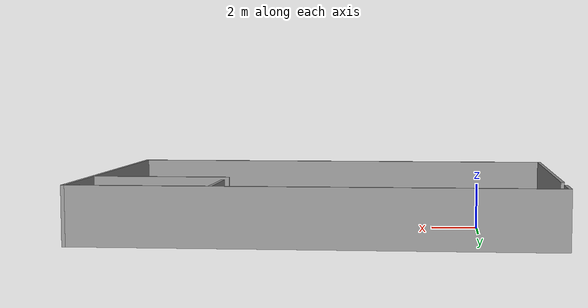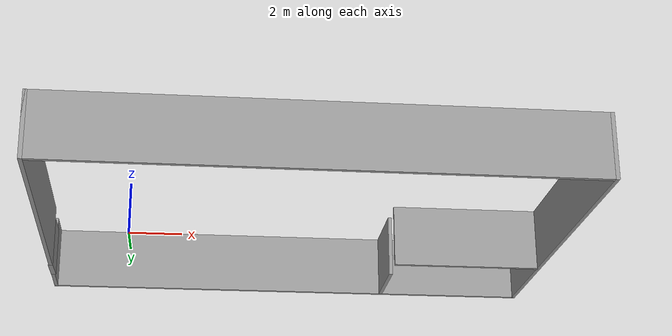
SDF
<?xml version='1.0'?>
<sdf version='1.7'>
  <model name='cafe_sim.world'>
    <pose>6.70803 0.117057 0 0 -0 0</pose>
    <link name='Door_0'>
      <collision name='Door_0_Collision'>
        <geometry>
          <box>
            <size>1.26718 0.2 2</size>
          </box>
        </geometry>
        <pose>0 0 1 0 -0 0</pose>
      </collision>
      <visual name='Door_0_Visual'>
        <pose>0 0 1 0 -0 0</pose>
        <geometry>
          <box>
            <size>1.26718 0.2 2</size>
          </box>
        </geometry>
        <material>
          <script>
            <uri>file://media/materials/scripts/gazebo.material</uri>
            <name>Gazebo/Grey</name>
          </script>
        </material>
      </visual>
      <pose>-10.0446 4.97633 0 0 -0 -1.58868</pose>
    </link>
    <link name='Wall_11'>
      <collision name='Wall_11_Collision'>
        <geometry>
          <box>
            <size>6 0.15 2.5</size>
          </box>
        </geometry>
        <pose>0 0 1.25 0 -0 0</pose>
      </collision>
      <visual name='Wall_11_Visual'>
        <pose>0 0 1.25 0 -0 0</pose>
        <geometry>
          <box>
            <size>6 0.15 2.5</size>
          </box>
        </geometry>
        <material>
          <script>
            <uri>file://media/materials/scripts/gazebo.material</uri>
            <name>Gazebo/Grey</name>
          </script>
          <ambient>1 1 1 1</ambient>
        </material>
        <meta>
          <layer>0</layer>
        </meta>
      </visual>
      <pose>7.0263 2.9648 0 0 -0 0</pose>
    </link>
    <link name='Wall_13'>
      <collision name='Wall_13_Collision'>
        <geometry>
          <box>
            <size>3 0.15 2.5</size>
          </box>
        </geometry>
        <pose>0 0 1.25 0 -0 0</pose>
      </collision>
      <visual name='Wall_13_Visual'>
        <pose>0 0 1.25 0 -0 0</pose>
        <geometry>
          <box>
            <size>3 0.15 2.5</size>
          </box>
        </geometry>
        <material>
          <script>
            <uri>file://media/materials/scripts/gazebo.material</uri>
            <name>Gazebo/Grey</name>
          </script>
          <ambient>1 1 1 1</ambient>
        </material>
        <meta>
          <layer>0</layer>
        </meta>
      </visual>
      <pose>4.0747 5.74641 0 0 -0 1.5708</pose>
    </link>
    <link name='Wall_5'>
      <collision name='Wall_5_Collision'>
        <geometry>
          <box>
            <size>11.75 0.15 2.5</size>
          </box>
        </geometry>
        <pose>0 0 1.25 0 -0 0</pose>
      </collision>
      <visual name='Wall_5_Visual'>
        <pose>0 0 1.25 0 -0 0</pose>
        <geometry>
          <box>
            <size>11.75 0.15 2.5</size>
          </box>
        </geometry>
        <material>
          <script>
            <uri>file://media/materials/scripts/gazebo.material</uri>
            <name>Gazebo/Grey</name>
          </script>
          <ambient>1 1 1 1</ambient>
        </material>
        <meta>
          <layer>0</layer>
        </meta>
      </visual>
      <pose>-10.05 -1.5 0 0 -0 -1.5708</pose>
    </link>
    <link name='Wall_6'>
      <collision name='Wall_6_Collision'>
        <geometry>
          <box>
            <size>20.25 0.15 2.5</size>
          </box>
        </geometry>
        <pose>0 0 1.25 0 -0 0</pose>
      </collision>
      <visual name='Wall_6_Visual'>
        <pose>0 0 1.25 0 -0 0</pose>
        <geometry>
          <box>
            <size>20.25 0.15 2.5</size>
          </box>
        </geometry>
        <material>
          <script>
            <uri>file://media/materials/scripts/gazebo.material</uri>
            <name>Gazebo/Grey</name>
          </script>
          <ambient>1 1 1 1</ambient>
        </material>
        <meta>
          <layer>0</layer>
        </meta>
      </visual>
      <pose>0 -7.3 0 0 -0 0</pose>
    </link>
    <link name='Wall_7'>
      <collision name='Wall_7_Collision'>
        <geometry>
          <box>
            <size>14.75 0.15 2.5</size>
          </box>
        </geometry>
        <pose>0 0 1.25 0 -0 0</pose>
      </collision>
      <visual name='Wall_7_Visual'>
        <pose>0 0 1.25 0 -0 0</pose>
        <geometry>
          <box>
            <size>14.75 0.15 2.5</size>
          </box>
        </geometry>
        <material>
          <script>
            <uri>file://media/materials/scripts/gazebo.material</uri>
            <name>Gazebo/Grey</name>
          </script>
          <ambient>1 1 1 1</ambient>
        </material>
        <meta>
          <layer>0</layer>
        </meta>
      </visual>
      <pose>10.05 -0 0 0 -0 1.5708</pose>
    </link>
    <link name='Wall_8'>
      <collision name='Wall_8_Collision'>
        <geometry>
          <box>
            <size>20.25 0.15 2.5</size>
          </box>
        </geometry>
        <pose>0 0 1.25 0 -0 0</pose>
      </collision>
      <visual name='Wall_8_Visual'>
        <pose>0 0 1.25 0 -0 0</pose>
        <geometry>
          <box>
            <size>20.25 0.15 2.5</size>
          </box>
        </geometry>
        <material>
          <script>
            <uri>file://media/materials/scripts/gazebo.material</uri>
            <name>Gazebo/Grey</name>
          </script>
          <ambient>1 1 1 1</ambient>
        </material>
        <meta>
          <layer>0</layer>
        </meta>
      </visual>
      <pose>0 7.3 0 0 -0 3.14159</pose>
    </link>
    <link name='Wall_9'>
      <collision name='Wall_9_Collision'>
        <geometry>
          <box>
            <size>1.75 0.15 2.5</size>
          </box>
        </geometry>
        <pose>0 0 1.25 0 -0 0</pose>
      </collision>
      <visual name='Wall_9_Visual'>
        <pose>0 0 1.25 0 -0 0</pose>
        <geometry>
          <box>
            <size>1.75 0.15 2.5</size>
          </box>
        </geometry>
        <material>
          <script>
            <uri>file://media/materials/scripts/gazebo.material</uri>
            <name>Gazebo/Grey</name>
          </script>
          <ambient>1 1 1 1</ambient>
        </material>
        <meta>
          <layer>0</layer>
        </meta>
      </visual>
      <pose>-10.05 6.5 0 0 -0 -1.5708</pose>
    </link>
    <static>1</static>
  </model>
</sdf>
